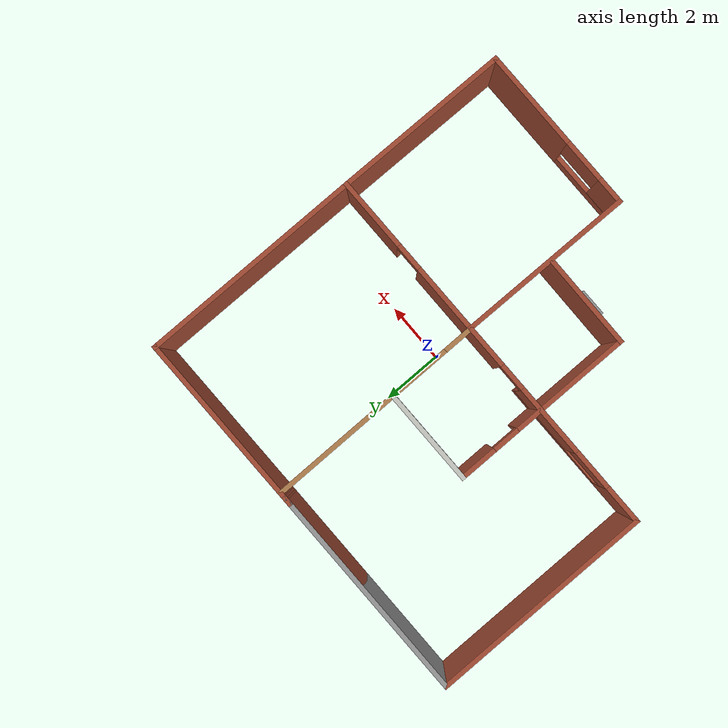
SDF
<?xml version='1.0'?>
<sdf version='1.6'>
  <model name='Building'>
    <pose frame=''>-0.932307 -0.379307 0 0 -0 0</pose>
    <link name='Door_0'>
      <collision name='Door_0_Collision'>
        <geometry>
          <box>
            <size>0.9 0.17 2</size>
          </box>
        </geometry>
        <pose frame=''>0 0 1 0 -0 0</pose>
      </collision>
      <visual name='Door_0_Visual'>
        <pose frame=''>0 0 1 0 -0 0</pose>
        <geometry>
          <box>
            <size>0.9 0.17 2</size>
          </box>
        </geometry>
        <material>
          <script>
            <uri>file://media/materials/scripts/gazebo.material</uri>
            <name>Gazebo/Grey</name>
          </script>
        </material>
      </visual>
      <pose frame=''>-0.878034 -4.05359 0 0 -0 0</pose>
    </link>
    <link name='Wall_27'>
      <collision name='Wall_27_Collision'>
        <geometry>
          <box>
            <size>7 0.15 2.5</size>
          </box>
        </geometry>
        <pose frame=''>0 0 1.25 0 -0 0</pose>
      </collision>
      <visual name='Wall_27_Visual'>
        <pose frame=''>0 0 1.25 0 -0 0</pose>
        <geometry>
          <box>
            <size>7 0.15 2.5</size>
          </box>
        </geometry>
        <material>
          <script>
            <uri>file://media/materials/scripts/gazebo.material</uri>
            <name>Gazebo/Grey</name>
          </script>
          <ambient>1 1 1 1</ambient>
        </material>
        <meta>
          <layer>0</layer>
        </meta>
      </visual>
      <pose frame=''>-3.09504 6.54451 0 0 -0 0</pose>
    </link>
    <link name='Wall_28'>
      <collision name='Wall_28_Collision'>
        <geometry>
          <box>
            <size>0.5 0.15 2.5</size>
          </box>
        </geometry>
        <pose frame=''>0 0 1.25 0 -0 0</pose>
      </collision>
      <visual name='Wall_28_Visual'>
        <pose frame=''>0 0 1.25 0 -0 0</pose>
        <geometry>
          <box>
            <size>0.5 0.15 2.5</size>
          </box>
        </geometry>
        <material>
          <script>
            <uri>file://media/materials/scripts/gazebo.material</uri>
            <name>Gazebo/Grey</name>
          </script>
          <ambient>1 1 1 1</ambient>
        </material>
        <meta>
          <layer>0</layer>
        </meta>
      </visual>
      <pose frame=''>0.504955 6.54451 0 0 -0 0</pose>
    </link>
    <link name='Wall_29'>
      <collision name='Wall_29_Collision'>
        <geometry>
          <box>
            <size>7.35 0.15 2.5</size>
          </box>
        </geometry>
        <pose frame=''>0 0 1.25 0 -0 0</pose>
      </collision>
      <visual name='Wall_29_Visual'>
        <pose frame=''>0 0 1.25 0 -0 0</pose>
        <geometry>
          <box>
            <size>7.35 0.15 2.5</size>
          </box>
        </geometry>
        <material>
          <script>
            <uri>file://media/materials/scripts/gazebo.material</uri>
            <name>Gazebo/Bricks</name>
          </script>
          <ambient>0.435294 0.796078 0.67451 1</ambient>
        </material>
        <meta>
          <layer>0</layer>
        </meta>
      </visual>
      <pose frame=''>-2.92005 6.54451 0 0 -0 3.14159</pose>
    </link>
    <link name='Wall_30'>
      <collision name='Wall_30_Collision'>
        <geometry>
          <box>
            <size>7.5 0.15 2.5</size>
          </box>
        </geometry>
        <pose frame=''>0 0 1.25 0 -0 0</pose>
      </collision>
      <visual name='Wall_30_Visual'>
        <pose frame=''>0 0 1.25 0 -0 0</pose>
        <geometry>
          <box>
            <size>7.5 0.15 2.5</size>
          </box>
        </geometry>
        <material>
          <script>
            <uri>file://media/materials/scripts/gazebo.material</uri>
            <name>Gazebo/Bricks</name>
          </script>
          <ambient>0.996078 0.47451 0.0196078 1</ambient>
        </material>
        <meta>
          <layer>0</layer>
        </meta>
      </visual>
      <pose frame=''>-6.52004 2.86951 0 0 0 -1.5708</pose>
    </link>
    <link name='Wall_31'>
      <pose frame=''>-0.0156 -0.807041 0 0 0 -0.000239</pose>
      <visual name='Wall_31_Visual_0'>
        <pose frame=''>-5.89513 0 1.25 0 -0 0</pose>
        <geometry>
          <box>
            <size>1.36863 0.15 2.5</size>
          </box>
        </geometry>
        <material>
          <script>
            <uri>file://media/materials/scripts/gazebo.material</uri>
            <name>Gazebo/Bricks</name>
          </script>
          <ambient>0 0 1 1</ambient>
        </material>
        <meta>
          <layer>0</layer>
        </meta>
      </visual>
      <collision name='Wall_31_Collision_0'>
        <geometry>
          <box>
            <size>1.36863 0.15 2.5</size>
          </box>
        </geometry>
        <pose frame=''>-5.89513 0 1.25 0 -0 0</pose>
      </collision>
      <visual name='Wall_31_Visual_1'>
        <pose frame=''>1.36316 0 1.25 0 -0 0</pose>
        <geometry>
          <box>
            <size>3.74468 0.15 2.5</size>
          </box>
        </geometry>
        <material>
          <script>
            <uri>file://media/materials/scripts/gazebo.material</uri>
            <name>Gazebo/Bricks</name>
          </script>
          <ambient>0 0 1 1</ambient>
        </material>
        <meta>
          <layer>0</layer>
        </meta>
      </visual>
      <collision name='Wall_31_Collision_1'>
        <geometry>
          <box>
            <size>3.74468 0.15 2.5</size>
          </box>
        </geometry>
        <pose frame=''>1.36316 0 1.25 0 -0 0</pose>
      </collision>
      <visual name='Wall_31_Visual_2'>
        <pose frame=''>5.35747 0 1.25 0 -0 0</pose>
        <geometry>
          <box>
            <size>2.44394 0.15 2.5</size>
          </box>
        </geometry>
        <material>
          <script>
            <uri>file://media/materials/scripts/gazebo.material</uri>
            <name>Gazebo/Bricks</name>
          </script>
          <ambient>0 0 1 1</ambient>
        </material>
        <meta>
          <layer>0</layer>
        </meta>
      </visual>
      <collision name='Wall_31_Collision_2'>
        <geometry>
          <box>
            <size>2.44394 0.15 2.5</size>
          </box>
        </geometry>
        <pose frame=''>5.35747 0 1.25 0 -0 0</pose>
      </collision>
      <visual name='Wall_31_Visual_3'>
        <pose frame=''>-3.31 0 0.25 0 -0 0</pose>
        <geometry>
          <box>
            <size>3.80163 0.15 0.5</size>
          </box>
        </geometry>
        <material>
          <script>
            <uri>file://media/materials/scripts/gazebo.material</uri>
            <name>Gazebo/Bricks</name>
          </script>
          <ambient>0 0 1 1</ambient>
        </material>
        <meta>
          <layer>0</layer>
        </meta>
      </visual>
      <collision name='Wall_31_Collision_3'>
        <geometry>
          <box>
            <size>3.80163 0.15 0.5</size>
          </box>
        </geometry>
        <pose frame=''>-3.31 0 0.25 0 -0 0</pose>
      </collision>
      <visual name='Wall_31_Visual_4'>
        <pose frame=''>-2.62505 0 1.5 0 -0 0</pose>
        <geometry>
          <box>
            <size>2.43174 0.15 2</size>
          </box>
        </geometry>
        <material>
          <script>
            <uri>file://media/materials/scripts/gazebo.material</uri>
            <name>Gazebo/Bricks</name>
          </script>
          <ambient>0 0 1 1</ambient>
        </material>
        <meta>
          <layer>0</layer>
        </meta>
      </visual>
      <collision name='Wall_31_Collision_4'>
        <geometry>
          <box>
            <size>2.43174 0.15 2</size>
          </box>
        </geometry>
        <pose frame=''>-2.62505 0 1.5 0 -0 0</pose>
      </collision>
      <visual name='Wall_31_Visual_5'>
        <pose frame=''>-4.52587 0 1.9 0 -0 0</pose>
        <geometry>
          <box>
            <size>1.36989 0.15 1.2</size>
          </box>
        </geometry>
        <material>
          <script>
            <uri>file://media/materials/scripts/gazebo.material</uri>
            <name>Gazebo/Bricks</name>
          </script>
          <ambient>0 0 1 1</ambient>
        </material>
        <meta>
          <layer>0</layer>
        </meta>
      </visual>
      <collision name='Wall_31_Collision_5'>
        <geometry>
          <box>
            <size>1.36989 0.15 1.2</size>
          </box>
        </geometry>
        <pose frame=''>-4.52587 0 1.9 0 -0 0</pose>
      </collision>
      <visual name='Wall_31_Visual_6'>
        <pose frame=''>3.6855 0 2.25 0 -0 0</pose>
        <geometry>
          <box>
            <size>0.9 0.15 0.5</size>
          </box>
        </geometry>
        <material>
          <script>
            <uri>file://media/materials/scripts/gazebo.material</uri>
            <name>Gazebo/Bricks</name>
          </script>
          <ambient>0 0 1 1</ambient>
        </material>
        <meta>
          <layer>0</layer>
        </meta>
      </visual>
      <collision name='Wall_31_Collision_6'>
        <geometry>
          <box>
            <size>0.9 0.15 0.5</size>
          </box>
        </geometry>
        <pose frame=''>3.6855 0 2.25 0 -0 0</pose>
      </collision>
      <visual name='Wall_31_Visual_7'>
        <pose frame=''>-0.95918 0 2.25 0 -0 0</pose>
        <geometry>
          <box>
            <size>0.9 0.15 0.5</size>
          </box>
        </geometry>
        <material>
          <script>
            <uri>file://media/materials/scripts/gazebo.material</uri>
            <name>Gazebo/Bricks</name>
          </script>
          <ambient>0 0 1 1</ambient>
        </material>
        <meta>
          <layer>0</layer>
        </meta>
      </visual>
      <collision name='Wall_31_Collision_7'>
        <geometry>
          <box>
            <size>0.9 0.15 0.5</size>
          </box>
        </geometry>
        <pose frame=''>-0.95918 0 2.25 0 -0 0</pose>
      </collision>
    </link>
    <link name='Wall_36'>
      <collision name='Wall_36_Collision'>
        <geometry>
          <box>
            <size>7.51446 0.15 2.5</size>
          </box>
        </geometry>
        <pose frame=''>0 0 1.25 0 -0 0</pose>
      </collision>
      <visual name='Wall_36_Visual'>
        <pose frame=''>0 0 1.25 0 -0 0</pose>
        <geometry>
          <box>
            <size>7.51446 0.15 2.5</size>
          </box>
        </geometry>
        <material>
          <script>
            <uri>file://media/materials/scripts/gazebo.material</uri>
            <name>Gazebo/Bricks</name>
          </script>
          <ambient>1 1 1 1</ambient>
        </material>
        <meta>
          <layer>0</layer>
        </meta>
      </visual>
      <pose frame=''>6.5043 2.8736 0 0 -0 1.5666</pose>
    </link>
    <link name='Wall_37'>
      <collision name='Wall_37_Collision'>
        <geometry>
          <box>
            <size>5.9898 0.15 2.5</size>
          </box>
        </geometry>
        <pose frame=''>0 0 1.25 0 -0 0</pose>
      </collision>
      <visual name='Wall_37_Visual'>
        <pose frame=''>0 0 1.25 0 -0 0</pose>
        <geometry>
          <box>
            <size>5.9898 0.15 2.5</size>
          </box>
        </geometry>
        <material>
          <script>
            <uri>file://media/materials/scripts/gazebo.material</uri>
            <name>Gazebo/Bricks</name>
          </script>
          <ambient>1 1 1 1</ambient>
        </material>
        <meta>
          <layer>0</layer>
        </meta>
      </visual>
      <pose frame=''>3.59985 6.55016 0 0 0 -3.13966</pose>
    </link>
    <link name='Wall_39'>
      <pose frame=''>0.888656 2.90862 0 0 -0 1.57305</pose>
      <visual name='Wall_39_Visual_0'>
        <pose frame=''>-3.19553 0 1.25 0 -0 0</pose>
        <geometry>
          <box>
            <size>0.919616 0.15 2.5</size>
          </box>
        </geometry>
        <material>
          <script>
            <uri>file://media/materials/scripts/gazebo.material</uri>
            <name>Gazebo/Wood</name>
          </script>
          <ambient>1 1 1 1</ambient>
        </material>
        <meta>
          <layer>0</layer>
        </meta>
      </visual>
      <collision name='Wall_39_Collision_0'>
        <geometry>
          <box>
            <size>0.919616 0.15 2.5</size>
          </box>
        </geometry>
        <pose frame=''>-3.19553 0 1.25 0 -0 0</pose>
      </collision>
      <visual name='Wall_39_Visual_1'>
        <pose frame=''>0.909808 0 1.25 0 -0 0</pose>
        <geometry>
          <box>
            <size>5.49106 0.15 2.5</size>
          </box>
        </geometry>
        <material>
          <script>
            <uri>file://media/materials/scripts/gazebo.material</uri>
            <name>Gazebo/Wood</name>
          </script>
          <ambient>1 1 1 1</ambient>
        </material>
        <meta>
          <layer>0</layer>
        </meta>
      </visual>
      <collision name='Wall_39_Collision_1'>
        <geometry>
          <box>
            <size>5.49106 0.15 2.5</size>
          </box>
        </geometry>
        <pose frame=''>0.909808 0 1.25 0 -0 0</pose>
      </collision>
      <visual name='Wall_39_Visual_2'>
        <pose frame=''>-2.28572 0 2.25 0 -0 0</pose>
        <geometry>
          <box>
            <size>0.9 0.15 0.5</size>
          </box>
        </geometry>
        <material>
          <script>
            <uri>file://media/materials/scripts/gazebo.material</uri>
            <name>Gazebo/Wood</name>
          </script>
          <ambient>1 1 1 1</ambient>
        </material>
        <meta>
          <layer>0</layer>
        </meta>
      </visual>
      <collision name='Wall_39_Collision_2'>
        <geometry>
          <box>
            <size>0.9 0.15 0.5</size>
          </box>
        </geometry>
        <pose frame=''>-2.28572 0 2.25 0 -0 0</pose>
      </collision>
    </link>
    <link name='Wall_43'>
      <collision name='Wall_43_Collision'>
        <geometry>
          <box>
            <size>5.89306 0.15 2.5</size>
          </box>
        </geometry>
        <pose frame=''>0 0 1.25 0 -0 0</pose>
      </collision>
      <visual name='Wall_43_Visual'>
        <pose frame=''>0 0 1.25 0 -0 0</pose>
        <geometry>
          <box>
            <size>5.89306 0.15 2.5</size>
          </box>
        </geometry>
        <material>
          <script>
            <uri>file://media/materials/scripts/gazebo.material</uri>
            <name>Gazebo/Bricks</name>
          </script>
          <ambient>1 1 1 1</ambient>
        </material>
        <meta>
          <layer>0</layer>
        </meta>
      </visual>
      <pose frame=''>6.46431 -3.68002 0 0 0 -1.57934</pose>
    </link>
    <link name='Wall_45'>
      <pose frame=''>3.65788 -6.55354 0 0 0 -3.14084</pose>
      <visual name='Wall_45_Visual_0'>
        <pose frame=''>-1.18565 0 1.25 0 -0 0</pose>
        <geometry>
          <box>
            <size>3.34247 0.15 2.5</size>
          </box>
        </geometry>
        <material>
          <script>
            <uri>file://media/materials/scripts/gazebo.material</uri>
            <name>Gazebo/Bricks</name>
          </script>
          <ambient>0.996078 0.47451 0.0196078 1</ambient>
        </material>
        <meta>
          <layer>0</layer>
        </meta>
      </visual>
      <collision name='Wall_45_Collision_0'>
        <geometry>
          <box>
            <size>3.34247 0.15 2.5</size>
          </box>
        </geometry>
        <pose frame=''>-1.18565 0 1.25 0 -0 0</pose>
      </collision>
      <visual name='Wall_45_Visual_1'>
        <pose frame=''>1.67123 0 0.25 0 -0 0</pose>
        <geometry>
          <box>
            <size>2.3713 0.15 0.5</size>
          </box>
        </geometry>
        <material>
          <script>
            <uri>file://media/materials/scripts/gazebo.material</uri>
            <name>Gazebo/Bricks</name>
          </script>
          <ambient>0.996078 0.47451 0.0196078 1</ambient>
        </material>
        <meta>
          <layer>0</layer>
        </meta>
      </visual>
      <collision name='Wall_45_Collision_1'>
        <geometry>
          <box>
            <size>2.3713 0.15 0.5</size>
          </box>
        </geometry>
        <pose frame=''>1.67123 0 0.25 0 -0 0</pose>
      </collision>
      <visual name='Wall_45_Visual_2'>
        <pose frame=''>2.37766 0 1.5 0 -0 0</pose>
        <geometry>
          <box>
            <size>0.958446 0.15 2</size>
          </box>
        </geometry>
        <material>
          <script>
            <uri>file://media/materials/scripts/gazebo.material</uri>
            <name>Gazebo/Bricks</name>
          </script>
          <ambient>0.996078 0.47451 0.0196078 1</ambient>
        </material>
        <meta>
          <layer>0</layer>
        </meta>
      </visual>
      <collision name='Wall_45_Collision_2'>
        <geometry>
          <box>
            <size>0.958446 0.15 2</size>
          </box>
        </geometry>
        <pose frame=''>2.37766 0 1.5 0 -0 0</pose>
      </collision>
      <visual name='Wall_45_Visual_3'>
        <pose frame=''>1.19201 0 1.9 0 -0 0</pose>
        <geometry>
          <box>
            <size>1.41285 0.15 1.2</size>
          </box>
        </geometry>
        <material>
          <script>
            <uri>file://media/materials/scripts/gazebo.material</uri>
            <name>Gazebo/Bricks</name>
          </script>
          <ambient>0.996078 0.47451 0.0196078 1</ambient>
        </material>
        <meta>
          <layer>0</layer>
        </meta>
      </visual>
      <collision name='Wall_45_Collision_3'>
        <geometry>
          <box>
            <size>1.41285 0.15 1.2</size>
          </box>
        </geometry>
        <pose frame=''>1.19201 0 1.9 0 -0 0</pose>
      </collision>
    </link>
    <link name='Wall_46'>
      <collision name='Wall_46_Collision'>
        <geometry>
          <box>
            <size>5.91816 0.15 2.5</size>
          </box>
        </geometry>
        <pose frame=''>0 0 1.25 0 -0 0</pose>
      </collision>
      <visual name='Wall_46_Visual'>
        <pose frame=''>0 0 1.25 0 -0 0</pose>
        <geometry>
          <box>
            <size>5.91816 0.15 2.5</size>
          </box>
        </geometry>
        <material>
          <script>
            <uri>file://media/materials/scripts/gazebo.material</uri>
            <name>Gazebo/Bricks</name>
          </script>
          <ambient>1 1 1 1</ambient>
        </material>
        <meta>
          <layer>0</layer>
        </meta>
      </visual>
      <pose frame=''>0.894551 -3.67161 0 0 -0 1.56437</pose>
    </link>
    <link name='Wall_48'>
      <collision name='Wall_48_Collision'>
        <geometry>
          <box>
            <size>3.25 0.15 2.5</size>
          </box>
        </geometry>
        <pose frame=''>0 0 1.25 0 -0 0</pose>
      </collision>
      <visual name='Wall_48_Visual'>
        <pose frame=''>0 0 1.25 0 -0 0</pose>
        <geometry>
          <box>
            <size>3.25 0.15 2.5</size>
          </box>
        </geometry>
        <material>
          <script>
            <uri>file://media/materials/scripts/gazebo.material</uri>
            <name>Gazebo/CeilingTiled</name>
          </script>
          <ambient>0.435294 0.796078 0.67451 1</ambient>
        </material>
        <meta>
          <layer>0</layer>
        </meta>
      </visual>
      <pose frame=''>-0.694862 2.21167 0 0 -0 3.14159</pose>
    </link>
    <link name='Wall_49'>
      <pose frame=''>-2.24486 -0.838328 0 0 0 -1.5708</pose>
      <visual name='Wall_49_Visual_0'>
        <pose frame=''>-2.46999 0 1.25 0 -0 0</pose>
        <geometry>
          <box>
            <size>1.31002 0.15 2.5</size>
          </box>
        </geometry>
        <material>
          <script>
            <uri>file://media/materials/scripts/gazebo.material</uri>
            <name>Gazebo/Bricks</name>
          </script>
          <ambient>1 1 1 1</ambient>
        </material>
        <meta>
          <layer>0</layer>
        </meta>
      </visual>
      <collision name='Wall_49_Collision_0'>
        <geometry>
          <box>
            <size>1.31002 0.15 2.5</size>
          </box>
        </geometry>
        <pose frame=''>-2.46999 0 1.25 0 -0 0</pose>
      </collision>
      <visual name='Wall_49_Visual_1'>
        <pose frame=''>1.10501 0 1.25 0 -0 0</pose>
        <geometry>
          <box>
            <size>4.03998 0.15 2.5</size>
          </box>
        </geometry>
        <material>
          <script>
            <uri>file://media/materials/scripts/gazebo.material</uri>
            <name>Gazebo/Bricks</name>
          </script>
          <ambient>1 1 1 1</ambient>
        </material>
        <meta>
          <layer>0</layer>
        </meta>
      </visual>
      <collision name='Wall_49_Collision_1'>
        <geometry>
          <box>
            <size>4.03998 0.15 2.5</size>
          </box>
        </geometry>
        <pose frame=''>1.10501 0 1.25 0 -0 0</pose>
      </collision>
      <visual name='Wall_49_Visual_2'>
        <pose frame=''>-1.36498 0 2.25 0 -0 0</pose>
        <geometry>
          <box>
            <size>0.9 0.15 0.5</size>
          </box>
        </geometry>
        <material>
          <script>
            <uri>file://media/materials/scripts/gazebo.material</uri>
            <name>Gazebo/Bricks</name>
          </script>
          <ambient>1 1 1 1</ambient>
        </material>
        <meta>
          <layer>0</layer>
        </meta>
      </visual>
      <collision name='Wall_49_Collision_2'>
        <geometry>
          <box>
            <size>0.9 0.15 0.5</size>
          </box>
        </geometry>
        <pose frame=''>-1.36498 0 2.25 0 -0 0</pose>
      </collision>
    </link>
    <link name='Wall_50'>
      <collision name='Wall_50_Collision'>
        <geometry>
          <box>
            <size>3.1949 0.15 2.5</size>
          </box>
        </geometry>
        <pose frame=''>0 0 1.25 0 -0 0</pose>
      </collision>
      <visual name='Wall_50_Visual'>
        <pose frame=''>0 0 1.25 0 -0 0</pose>
        <geometry>
          <box>
            <size>3.1949 0.15 2.5</size>
          </box>
        </geometry>
        <material>
          <script>
            <uri>file://media/materials/scripts/gazebo.material</uri>
            <name>Gazebo/Bricks</name>
          </script>
          <ambient>0.996078 0.47451 0.0196078 1</ambient>
        </material>
        <meta>
          <layer>0</layer>
        </meta>
      </visual>
      <pose frame=''>-0.722682 -3.89854 0 0 0 -0.006711</pose>
    </link>
    <static>1</static>
  </model>
</sdf>
